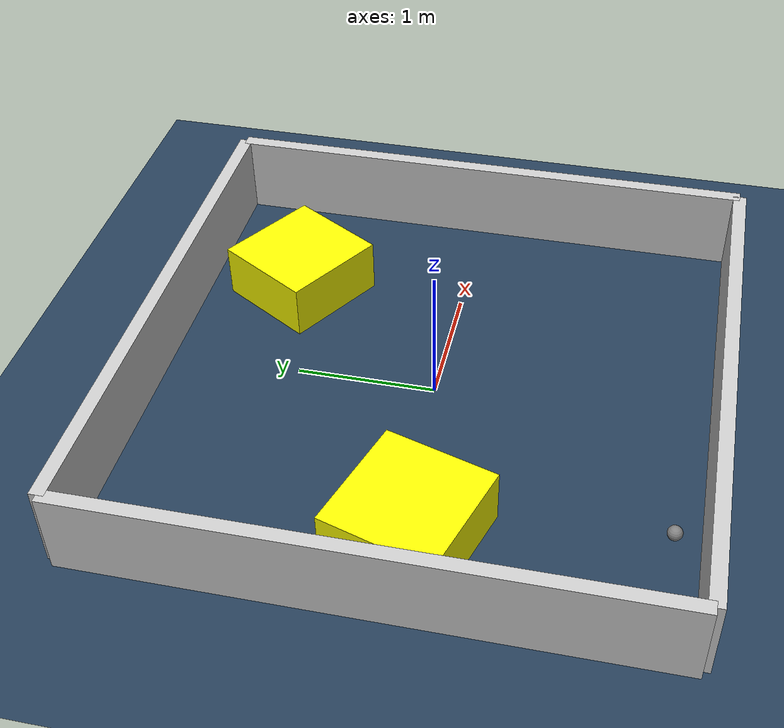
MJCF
<?xml version="1.0" ?>
<mujoco model="generated_environment">
  <option timestep="0.01" integrator="RK4" cone="elliptic"/>
  <default>
    <geom density="1"/>
  </default>
  <asset>
    <texture builtin="gradient" height="3072" rgb1="0.3 0.5 0.7" rgb2="0 0 0" type="skybox" width="512"/>
    <texture builtin="checker" height="300" mark="edge" markrgb="0.8 0.8 0.8" name="groundplane" rgb1="0.2 0.3 0.4" rgb2="0.1 0.2 0.3" type="2d" width="300"/>
    <material name="groundplane" reflectance="0.2" texrepeat="5 5" texture="groundplane" texuniform="true"/>
    <material name="robot" rgba="0.0 1.0 0.0 1"/>
  </asset>
  <worldbody>
    <light dir="0 0 -1" directional="true" pos="0 0 1.5"/>
    <geom condim="4" friction="1.0 0.005 0.001" material="groundplane" name="floor" size="0 0 0.05" type="plane"/>
    <body name="walls">
      <geom name="wall_1" condim="4" pos="-2.0 0.0 0.3" rgba="0.800000011920929 0.800000011920929 0.800000011920929 1.0" size="0.05 2.0 0.3" type="box"/>
      <geom name="wall_2" condim="4" pos="2.0 0.0 0.3" rgba="0.800000011920929 0.800000011920929 0.800000011920929 1.0" size="0.05 2.0 0.3" type="box"/>
      <geom name="wall_3" condim="4" pos="0.0 -2.0 0.3" rgba="0.800000011920929 0.800000011920929 0.800000011920929 1.0" size="2.0 0.05 0.3" type="box"/>
      <geom name="wall_4" condim="4" pos="0.0 2.0 0.3" rgba="0.800000011920929 0.800000011920929 0.800000011920929 1.0" size="2.0 0.05 0.3" type="box"/>
    </body>
    <body name="robot">
      <joint name="joint_x" type="slide" pos="0 0 0" axis="1 0 0"/>
      <joint name="joint_y" type="slide" pos="0 0 0" axis="0 1 0"/>
      <geom name="robot" type="sphere" pos="-1.158339520382552 -1.764035435561087 0.2" size="0.05" mass="5." friction="1.0 0.005 0.0001" condim="4"/>
      <site name="sensor_ball"/>
    </body>
    <body name="obstacle_1_movable">
      <geom name="obstacle_1_movable" condim="4" pos="0.9329522902994258 1.2425716326198144 0.2" euler="0 0 239.06461586791488" friction="1.0 0.005 0.001" rgba="1 1 0 1" size="0.38457572983479005 0.3982012356065414 0.2" type="box" mass="0.1"/>
      <joint type="free"/>
    </body>
    <body name="obstacle_2_movable">
      <geom name="obstacle_2_movable" condim="4" pos="-1.374945939686581 -0.12805270156777993 0.2" euler="0 0 72.92615880306867" friction="1.0 0.005 0.001" rgba="1 1 0 1" size="0.4090735322294857 0.4294688220540489 0.2" type="box" mass="0.1"/>
      <joint type="free"/>
    </body>
  </worldbody>
  <actuator>
    <motor name="actuator_x" joint="joint_x" gear="1" ctrlrange="-1 1"/>
    <motor name="actuator_y" joint="joint_y" gear="1" ctrlrange="-1 1"/>
  </actuator>
</mujoco>
